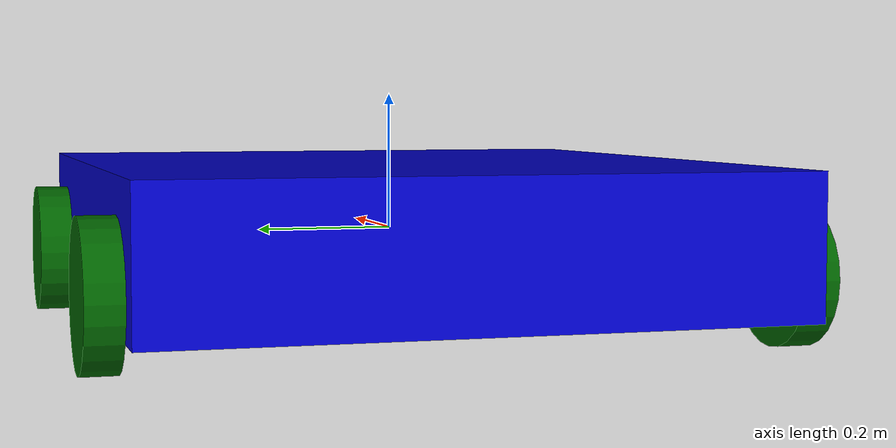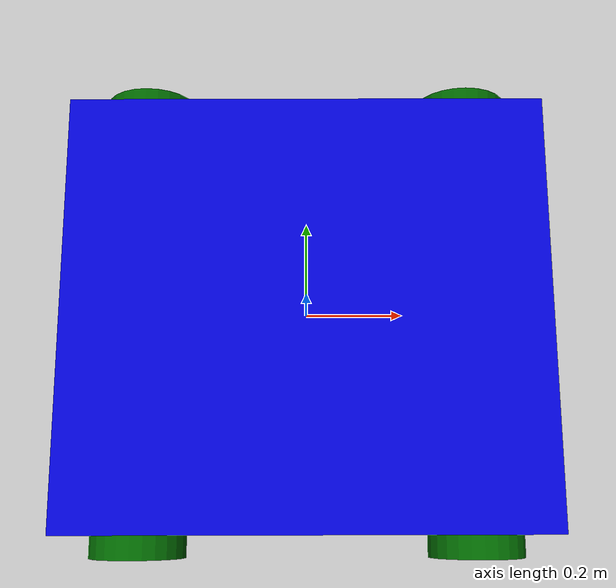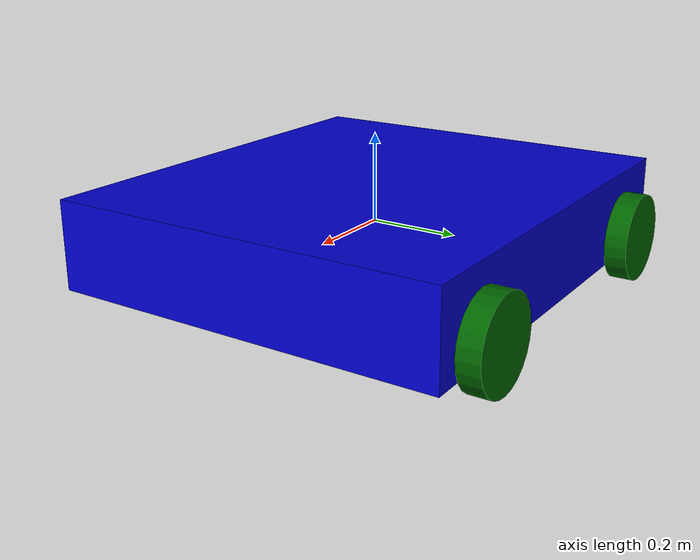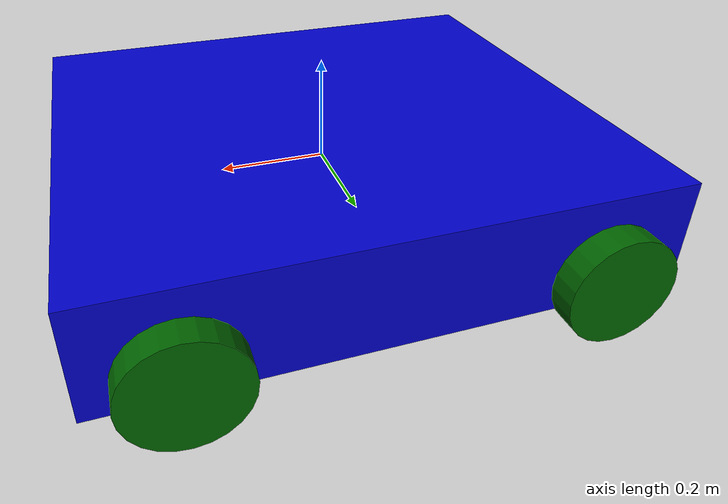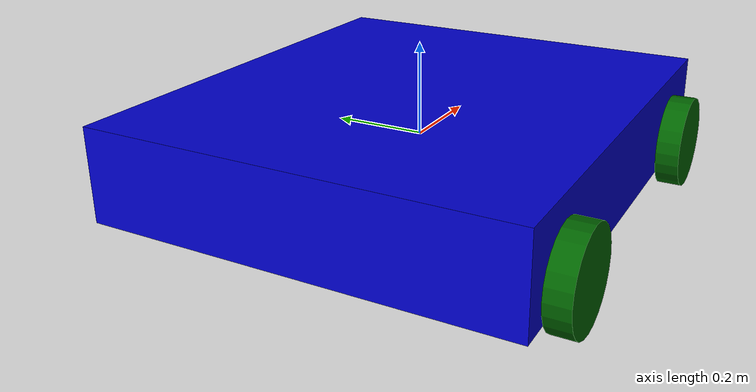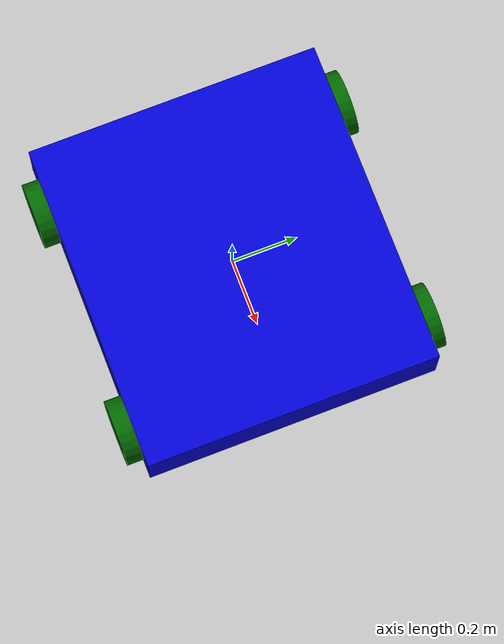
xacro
<?xml version="1.0"?>
<!--
	base
	laser:hokuyo
	IMU
-->
<robot name="smartcar_base" xmlns:xacro="http://www.ros.org/wiki/xacro" >
	<xacro:include filename="$(find mygazebo)/gazebo/mycar_base_gazebo.urdf.xacro"/>
    <xacro:include filename="$(find mygazebo)/property/mycar_base_property.urdf.xacro"/>

    <xacro:macro name="default_inertial" params="mass">
    <inertial>
      <mass value="${mass}" />
      <inertia ixx="1.0" ixy="0.0" ixz="0.0" iyy="1.0" iyz="0.0" izz="1.0" />
    </inertial>
    </xacro:macro>

    <link name="base_link">
        <visual>
            <geometry>
                <box size="${length} ${width} ${height}"/>
            </geometry>
            <material name="blue">
                <color rgba="0 0 .8 1"/>
            </material>
        </visual>
        <collision>
            <geometry>
                <box size="${length} ${width} ${height}"/>
            </geometry>
            <origin rpy="0 0 0" xyz="0 0 0"/>
        </collision>
        <xacro:default_inertial mass="5"/>
    </link>

    <link name="right_front_wheel">
        <visual>
            <geometry>
                <cylinder length="${wheelLen}" radius="${wheeldiam}"/>
            </geometry>
            <material name="black">
                <color rgba="0 100 0 1"/>
            </material>
        </visual>
        <collision>
            <geometry>
                <cylinder length="${wheelLen}" radius="${wheeldiam}"/>
            </geometry>
        </collision>
        <xacro:default_inertial mass="2"/>
    </link>

    <joint name="right_front_wheel_joint" type="continuous">
        <axis xyz="0 0 1"/>
        <parent link="base_link"/>
        <child link="right_front_wheel"/>
        <origin rpy=" ${-pi/2.0}  0  0"  xyz="${length/2-0.15} ${-width/2-0.025} -0.05"/>
        <limit effort="100" velocity="100"/>
        <joint_properties damping="0.0" friction="0.0"/>
    </joint>

    <link name="right_back_wheel">
        <visual>
            <geometry>
                <cylinder length="${wheelLen}" radius="${wheeldiam}"/>
            </geometry>
            <material name="black">
                <color rgba="0 100 0 1"/>
            </material>
        </visual>
        <collision>
            <geometry>
                <cylinder length="${wheelLen}" radius="${wheeldiam}"/>
            </geometry>
            <origin  rpy="0 0 0" xyz="0 0 0"/>
        </collision>
        <xacro:default_inertial mass="2"/>
    </link>

    <joint name="right_back_wheel_joint" type="continuous">
        <axis xyz="0 0 1"/>
        <parent link="base_link"/>
        <child link="right_back_wheel"/>
        <origin rpy=" ${pi/2}  0  0"  xyz="${-length/2+0.15} ${-width/2-0.025} -0.05"/>
        <limit effort="100" velocity="100"/>
        <joint_properties damping="0.0" friction="0.0"/>
    </joint>

    <link name="left_front_wheel">
        <visual>
            <geometry>
                <cylinder length="${wheelLen}" radius="${wheeldiam}"/>
            </geometry>
            <origin  rpy="0 0 0" xyz="0 0 0"/>
            <material name="black">
                <color rgba="0 100 0 1"/>
            </material>
        </visual>
        <collision>
            <geometry>
                <cylinder length="${wheelLen}" radius="${wheeldiam}"/>
            </geometry>
        </collision>
        <xacro:default_inertial mass="2"/>
    </link>

    <joint name="left_front_wheel_joint" type="continuous">
        <axis xyz="0 0 1"/>
        <parent link="base_link"/>
        <child link="left_front_wheel"/>
        <origin rpy=" ${-pi/2}  0  0"  xyz="${length/2-0.15} ${width/2+0.025} -0.05"/>
        <limit effort="100" velocity="100"/>
        <joint_properties damping="0.0" friction="0.0"/>
    </joint>

    <link name="left_back_wheel">
        <visual>
            <geometry>
                <cylinder length="${wheelLen}" radius="${wheeldiam}"/>
            </geometry>
            <origin  rpy="0 0 0" xyz="0 0 0"/>
            <material name="black">
                <color rgba="0 100 0 1"/>
            </material>
        </visual>
        <collision>
            <geometry>
                <cylinder length="${wheelLen}" radius="${wheeldiam}"/>
            </geometry>
        </collision>
        <xacro:default_inertial mass="2"/>
    </link>

    <joint name="left_back_wheel_joint" type="continuous">
        <axis xyz="0 0 1"/>
        <parent link="base_link"/>
        <child link="left_back_wheel"/>
        <origin rpy=" ${pi/2}  0  0"  xyz="${-length/2+0.15} ${width/2+0.025} -0.05"/>
        <limit effort="100" velocity="100"/>
        <joint_properties damping="0.0" friction="0.0"/>
    </joint>

  <mycar_base_sim/>
  <mycar_base_property/>
</robot>

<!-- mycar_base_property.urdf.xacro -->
<robot name="mycar_base_property" xmlns:xacro="http://www.ros.org/wiki/xacro" >

    <xacro:property name="length" value="1" />
    <xacro:property name="width" value="0.9" />
    <xacro:property name="height" value="0.2" />
    <xacro:property name="wheelLen" value="0.05" />
    <xacro:property name="wheeldiam" value="0.1" />
    <xacro:property name="clength" value="0.02" />
    <xacro:property name="radius" value="0.05" />
    <xacro:property name="baselen" value="0.4" />
    <xacro:property name="pi" value="3.1415926" />
</robot>
